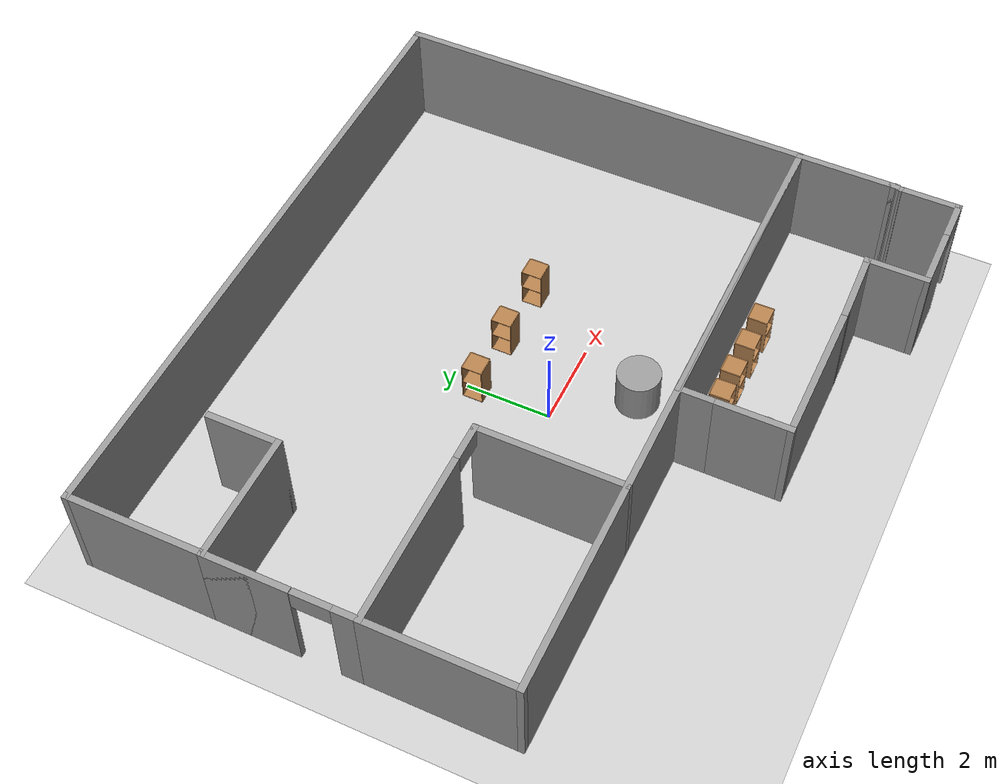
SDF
<sdf version="1.6">
 <world name="default">
  <model name="ground_plane">
   <static>1</static>
   <link name="link">
    <collision name="collision">
     <geometry><plane><normal>0 0 1</normal><size>100 100</size></plane></geometry>
     <surface><friction><ode><mu>100</mu><mu2>50</mu2></ode></friction></surface>
    </collision>
    <visual name="visual">
     <cast_shadows>0</cast_shadows>
     <geometry><plane><normal>0 0 1</normal><size>100 100</size></plane></geometry>
     <material>
      <script><uri>file://media/materials/scripts/gazebo.material</uri><name>Gazebo/Grey</name></script>
     </material>
    </visual>
   </link>
  </model>
  <model name="office_building_0">
   <pose>0.0648 2.0804 0 0 -0 0</pose>
   <link name="Wall_15">
    <collision name="Wall_15_Collision">
     <geometry><box><size>3.25 0.15 2.5</size></box></geometry>
     <pose>0 0 1.25 0 -0 0</pose>
    </collision>
    <visual name="Wall_15_Visual">
     <pose>0 0 1.25 0 -0 0</pose>
     <geometry><box><size>3.25 0.15 2.5</size></box></geometry>
     <material>
      <script><uri>file://media/materials/scripts/gazebo.material</uri><name>Gazebo/Grey</name></script>
      <ambient>1 1 1 1</ambient>
     </material>
    </visual>
    <pose>-7.425 3.375 0 0 0 -1.5708</pose>
   </link>
   <link name="Wall_16">
    <collision name="Wall_16_Collision">
     <geometry><box><size>3 0.15 2.5</size></box></geometry>
     <pose>0 0 1.25 0 -0 0</pose>
    </collision>
    <visual name="Wall_16_Visual">
     <pose>0 0 1.25 0 -0 0</pose>
     <geometry><box><size>3 0.15 2.5</size></box></geometry>
     <material>
      <script><uri>file://media/materials/scripts/gazebo.material</uri><name>Gazebo/Grey</name></script>
      <ambient>1 1 1 1</ambient>
     </material>
    </visual>
    <pose>-6 1.825 0 0 -0 0</pose>
   </link>
   <link name="Wall_17">
    <collision name="Wall_17_Collision">
     <geometry><box><size>1.75 0.15 2.5</size></box></geometry>
     <pose>0 0 1.25 0 -0 0</pose>
    </collision>
    <visual name="Wall_17_Visual">
     <pose>0 0 1.25 0 -0 0</pose>
     <geometry><box><size>1.75 0.15 2.5</size></box></geometry>
     <material>
      <script><uri>file://media/materials/scripts/gazebo.material</uri><name>Gazebo/Grey</name></script>
      <ambient>1 1 1 1</ambient>
     </material>
    </visual>
    <pose>-4.575 2.625 0 0 -0 1.5708</pose>
   </link>
   <link name="Wall_19">
    <collision name="Wall_19_Collision">
     <geometry><box><size>10 0.15 2.5</size></box></geometry>
     <pose>0 0 1.25 0 -0 0</pose>
    </collision>
    <visual name="Wall_19_Visual">
     <pose>0 0 1.25 0 -0 0</pose>
     <geometry><box><size>10 0.15 2.5</size></box></geometry>
     <material>
      <script><uri>file://media/materials/scripts/gazebo.material</uri><name>Gazebo/Grey</name></script>
      <ambient>1 1 1 1</ambient>
     </material>
    </visual>
    <pose>7.425 0 0 0 0 -1.5708</pose>
   </link>
   <link name="Wall_20">
    <collision name="Wall_20_Collision">
     <geometry><box><size>15 0.15 2.5</size></box></geometry>
     <pose>0 0 1.25 0 -0 0</pose>
    </collision>
    <visual name="Wall_20_Visual">
     <pose>0 0 1.25 0 -0 0</pose>
     <geometry><box><size>15 0.15 2.5</size></box></geometry>
     <material>
      <script><uri>file://media/materials/scripts/gazebo.material</uri><name>Gazebo/Grey</name></script>
      <ambient>1 1 1 1</ambient>
     </material>
    </visual>
    <pose>0 -4.925 0 0 -0 3.14159</pose>
   </link>
   <link name="Wall_21">
    <collision name="Wall_21_Collision">
     <geometry><box><size>3.5 0.15 2.5</size></box></geometry>
     <pose>0 0 1.25 0 -0 0</pose>
    </collision>
    <visual name="Wall_21_Visual">
     <pose>0 0 1.25 0 -0 0</pose>
     <geometry><box><size>3.5 0.15 2.5</size></box></geometry>
     <material>
      <script><uri>file://media/materials/scripts/gazebo.material</uri><name>Gazebo/Grey</name></script>
      <ambient>1 1 1 1</ambient>
     </material>
    </visual>
    <pose>-7.425 -3.25 0 0 -0 1.5708</pose>
   </link>
   <link name="Wall_22">
    <pose>-5 -1.575 0 0 -0 0</pose>
    <visual name="Wall_22_Visual_0">
     <pose>-0.454413 0 1.25 0 -0 0</pose>
     <geometry><box><size>4.09117 0.15 2.5</size></box></geometry>
     <material>
      <script><uri>file://media/materials/scripts/gazebo.material</uri><name>Gazebo/Grey</name></script>
      <ambient>1 1 1 1</ambient>
     </material>
    </visual>
    <collision name="Wall_22_Collision_0">
     <geometry><box><size>4.09117 0.15 2.5</size></box></geometry>
     <pose>-0.454413 0 1.25 0 -0 0</pose>
    </collision>
    <visual name="Wall_22_Visual_1">
     <pose>2.49559 0 1.25 0 -0 0</pose>
     <geometry><box><size>0.008827 0.15 2.5</size></box></geometry>
     <material>
      <script><uri>file://media/materials/scripts/gazebo.material</uri><name>Gazebo/Grey</name></script>
      <ambient>1 1 1 1</ambient>
     </material>
    </visual>
    <collision name="Wall_22_Collision_1">
     <geometry><box><size>0.008827 0.15 2.5</size></box></geometry>
     <pose>2.49559 0 1.25 0 -0 0</pose>
    </collision>
    <visual name="Wall_22_Visual_2">
     <pose>2.04117 0 2.25 0 -0 0</pose>
     <geometry><box><size>0.9 0.15 0.5</size></box></geometry>
     <material>
      <script><uri>file://media/materials/scripts/gazebo.material</uri><name>Gazebo/Grey</name></script>
      <ambient>1 1 1 1</ambient>
     </material>
    </visual>
    <collision name="Wall_22_Collision_2">
     <geometry><box><size>0.9 0.15 0.5</size></box></geometry>
     <pose>2.04117 0 2.25 0 -0 0</pose>
    </collision>
   </link>
   <link name="Wall_23">
    <collision name="Wall_23_Collision">
     <geometry><box><size>3.5 0.15 2.5</size></box></geometry>
     <pose>0 0 1.25 0 -0 0</pose>
    </collision>
    <visual name="Wall_23_Visual">
     <pose>0 0 1.25 0 -0 0</pose>
     <geometry><box><size>3.5 0.15 2.5</size></box></geometry>
     <material>
      <script><uri>file://media/materials/scripts/gazebo.material</uri><name>Gazebo/Grey</name></script>
      <ambient>1 1 1 1</ambient>
     </material>
    </visual>
    <pose>-2.575 -3.25 0 0 0 -1.5708</pose>
   </link>
   <link name="Wall_25">
    <pose>-7.425 0.125 0 0 -0 1.5708</pose>
    <visual name="Wall_25_Visual_0">
     <pose>-1.45033 0 1.25 0 -0 0</pose>
     <geometry><box><size>0.649349 0.15 2.5</size></box></geometry>
     <material>
      <script><uri>file://media/materials/scripts/gazebo.material</uri><name>Gazebo/Grey</name></script>
      <ambient>1 1 1 1</ambient>
     </material>
    </visual>
    <collision name="Wall_25_Collision_0">
     <geometry><box><size>0.649349 0.15 2.5</size></box></geometry>
     <pose>-1.45033 0 1.25 0 -0 0</pose>
    </collision>
    <visual name="Wall_25_Visual_1">
     <pose>0.774675 0 1.25 0 -0 0</pose>
     <geometry><box><size>2.00065 0.15 2.5</size></box></geometry>
     <material>
      <script><uri>file://media/materials/scripts/gazebo.material</uri><name>Gazebo/Grey</name></script>
      <ambient>1 1 1 1</ambient>
     </material>
    </visual>
    <collision name="Wall_25_Collision_1">
     <geometry><box><size>2.00065 0.15 2.5</size></box></geometry>
     <pose>0.774675 0 1.25 0 -0 0</pose>
    </collision>
    <visual name="Wall_25_Visual_2">
     <pose>1.21823 0 1.25 0 -0 0</pose>
     <geometry><box><size>1.11353 0.15 2.5</size></box></geometry>
     <material>
      <script><uri>file://media/materials/scripts/gazebo.material</uri><name>Gazebo/Grey</name></script>
      <ambient>1 1 1 1</ambient>
     </material>
    </visual>
    <collision name="Wall_25_Collision_2">
     <geometry><box><size>1.11353 0.15 2.5</size></box></geometry>
     <pose>1.21823 0 1.25 0 -0 0</pose>
    </collision>
    <visual name="Wall_25_Visual_3">
     <pose>-0.682092 0 2.25 0 -0 0</pose>
     <geometry><box><size>0.887117 0.15 0.5</size></box></geometry>
     <material>
      <script><uri>file://media/materials/scripts/gazebo.material</uri><name>Gazebo/Grey</name></script>
      <ambient>1 1 1 1</ambient>
     </material>
    </visual>
    <collision name="Wall_25_Collision_3">
     <geometry><box><size>0.887117 0.15 0.5</size></box></geometry>
     <pose>-0.682092 0 2.25 0 -0 0</pose>
    </collision>
   </link>
   <link name="Wall_4">
    <collision name="Wall_4_Collision">
     <geometry><box><size>15 0.15 2.5</size></box></geometry>
     <pose>0 0 1.25 0 -0 0</pose>
    </collision>
    <visual name="Wall_4_Visual">
     <pose>0 0 1.25 0 -0 0</pose>
     <geometry><box><size>15 0.15 2.5</size></box></geometry>
     <material>
      <script><uri>file://media/materials/scripts/gazebo.material</uri><name>Gazebo/Grey</name></script>
      <ambient>1 1 1 1</ambient>
     </material>
    </visual>
    <pose>0 4.925 0 0 -0 0</pose>
   </link>
   <static>1</static>
  </model>
  <model name="cabinet">
   <static>1</static>
   <link name="cabinet_bottom_plate">
    <inertial>
     <pose>0 0 -1 0 -0 0</pose>
     <inertia><ixx>2.05</ixx><ixy>0</ixy><ixz>0</ixz><iyy>2.05</iyy><iyz>0</iyz><izz>2.05</izz></inertia>
     <mass>25</mass>
    </inertial>
    <collision name="cabinet_bottom_plate_geom">
     <pose>0 0 0.01 0 -0 0</pose>
     <geometry><box><size>0.45 0.45 0.02</size></box></geometry>
    </collision>
    <visual name="cabinet_bottom_plate_geom_visual">
     <pose>0 0 0.01 0 -0 0</pose>
     <geometry><box><size>0.45 0.45 0.02</size></box></geometry>
     <material>
      <script><uri>file://media/materials/scripts/gazebo.material</uri><name>Gazebo/Wood</name></script>
     </material>
    </visual>
    <collision name="cabinet_bottom_plate_geom_cabinet_back_plate">
     <pose>0.235 0 0.51 0 -0 0</pose>
     <geometry><box><size>0.02 0.45 1.02</size></box></geometry>
    </collision>
    <visual name="cabinet_bottom_plate_geom_cabinet_back_plate_visual">
     <pose>0.235 0 0.51 0 -0 0</pose>
     <geometry><box><size>0.02 0.45 1.02</size></box></geometry>
     <material>
      <script><uri>file://media/materials/scripts/gazebo.material</uri><name>Gazebo/Wood</name></script>
     </material>
    </visual>
    <collision name="cabinet_bottom_plate_geom_cabinet_left_plate">
     <pose>0 0.235 0.51 0 -0 0</pose>
     <geometry><box><size>0.45 0.02 1.02</size></box></geometry>
    </collision>
    <visual name="cabinet_bottom_plate_geom_cabinet_left_plate_visual">
     <pose>0 0.235 0.51 0 -0 0</pose>
     <geometry><box><size>0.45 0.02 1.02</size></box></geometry>
     <material>
      <script><uri>file://media/materials/scripts/gazebo.material</uri><name>Gazebo/Wood</name></script>
     </material>
    </visual>
    <collision name="cabinet_bottom_plate_geom_cabinet_middle_plate">
     <pose>0 0 0.51 0 -0 0</pose>
     <geometry><box><size>0.45 0.45 0.02</size></box></geometry>
    </collision>
    <visual name="cabinet_bottom_plate_geom_cabinet_middle_plate_visual">
     <pose>0 0 0.51 0 -0 0</pose>
     <geometry><box><size>0.45 0.45 0.02</size></box></geometry>
     <material>
      <script><uri>file://media/materials/scripts/gazebo.material</uri><name>Gazebo/Wood</name></script>
     </material>
    </visual>
    <collision name="cabinet_bottom_plate_geom_cabinet_right_plate">
     <pose>0 -0.235 0.51 0 -0 0</pose>
     <geometry><box><size>0.45 0.02 1.02</size></box></geometry>
    </collision>
    <visual name="cabinet_bottom_plate_geom_cabinet_right_plate_visual">
     <pose>0 -0.235 0.51 0 -0 0</pose>
     <geometry><box><size>0.45 0.02 1.02</size></box></geometry>
     <material>
      <script><uri>file://media/materials/scripts/gazebo.material</uri><name>Gazebo/Wood</name></script>
     </material>
    </visual>
    <collision name="cabinet_bottom_plate_geom_cabinet_top_plate">
     <pose>0 0 1.01 0 -0 0</pose>
     <geometry><box><size>0.45 0.45 0.02</size></box></geometry>
    </collision>
    <visual name="cabinet_bottom_plate_geom_cabinet_top_plate_visual">
     <pose>0 0 1.01 0 -0 0</pose>
     <geometry><box><size>0.45 0.45 0.02</size></box></geometry>
     <material>
      <script><uri>file://media/materials/scripts/gazebo.material</uri><name>Gazebo/Wood</name></script>
     </material>
    </visual>
   </link>
   <pose>2.98625 1.73631 0 0 -0 0</pose>
  </model>
  <model name="cabinet_clone">
   <static>1</static>
   <link name="cabinet_bottom_plate">
    <inertial>
     <pose>0 0 -1 0 -0 0</pose>
     <inertia><ixx>2.05</ixx><ixy>0</ixy><ixz>0</ixz><iyy>2.05</iyy><iyz>0</iyz><izz>2.05</izz></inertia>
     <mass>25</mass>
    </inertial>
    <collision name="cabinet_bottom_plate_geom">
     <pose>0 0 0.01 0 -0 0</pose>
     <geometry><box><size>0.45 0.45 0.02</size></box></geometry>
    </collision>
    <visual name="cabinet_bottom_plate_geom_visual">
     <pose>0 0 0.01 0 -0 0</pose>
     <geometry><box><size>0.45 0.45 0.02</size></box></geometry>
     <material>
      <script><uri>file://media/materials/scripts/gazebo.material</uri><name>Gazebo/Wood</name></script>
     </material>
    </visual>
    <collision name="cabinet_bottom_plate_geom_cabinet_back_plate">
     <pose>0.235 0 0.51 0 -0 0</pose>
     <geometry><box><size>0.02 0.45 1.02</size></box></geometry>
    </collision>
    <visual name="cabinet_bottom_plate_geom_cabinet_back_plate_visual">
     <pose>0.235 0 0.51 0 -0 0</pose>
     <geometry><box><size>0.02 0.45 1.02</size></box></geometry>
     <material>
      <script><uri>file://media/materials/scripts/gazebo.material</uri><name>Gazebo/Wood</name></script>
     </material>
    </visual>
    <collision name="cabinet_bottom_plate_geom_cabinet_left_plate">
     <pose>0 0.235 0.51 0 -0 0</pose>
     <geometry><box><size>0.45 0.02 1.02</size></box></geometry>
    </collision>
    <visual name="cabinet_bottom_plate_geom_cabinet_left_plate_visual">
     <pose>0 0.235 0.51 0 -0 0</pose>
     <geometry><box><size>0.45 0.02 1.02</size></box></geometry>
     <material>
      <script><uri>file://media/materials/scripts/gazebo.material</uri><name>Gazebo/Wood</name></script>
     </material>
    </visual>
    <collision name="cabinet_bottom_plate_geom_cabinet_middle_plate">
     <pose>0 0 0.51 0 -0 0</pose>
     <geometry><box><size>0.45 0.45 0.02</size></box></geometry>
    </collision>
    <visual name="cabinet_bottom_plate_geom_cabinet_middle_plate_visual">
     <pose>0 0 0.51 0 -0 0</pose>
     <geometry><box><size>0.45 0.45 0.02</size></box></geometry>
     <material>
      <script><uri>file://media/materials/scripts/gazebo.material</uri><name>Gazebo/Wood</name></script>
     </material>
    </visual>
    <collision name="cabinet_bottom_plate_geom_cabinet_right_plate">
     <pose>0 -0.235 0.51 0 -0 0</pose>
     <geometry><box><size>0.45 0.02 1.02</size></box></geometry>
    </collision>
    <visual name="cabinet_bottom_plate_geom_cabinet_right_plate_visual">
     <pose>0 -0.235 0.51 0 -0 0</pose>
     <geometry><box><size>0.45 0.02 1.02</size></box></geometry>
     <material>
      <script><uri>file://media/materials/scripts/gazebo.material</uri><name>Gazebo/Wood</name></script>
     </material>
    </visual>
    <collision name="cabinet_bottom_plate_geom_cabinet_top_plate">
     <pose>0 0 1.01 0 -0 0</pose>
     <geometry><box><size>0.45 0.45 0.02</size></box></geometry>
    </collision>
    <visual name="cabinet_bottom_plate_geom_cabinet_top_plate_visual">
     <pose>0 0 1.01 0 -0 0</pose>
     <geometry><box><size>0.45 0.45 0.02</size></box></geometry>
     <material>
      <script><uri>file://media/materials/scripts/gazebo.material</uri><name>Gazebo/Wood</name></script>
     </material>
    </visual>
   </link>
   <pose>1.43128 1.75091 0 0 -0 0</pose>
  </model>
  <model name="unit_cylinder_1">
   <pose>1.23104 -1.57578 0.499994 -4e-06 -3e-06 -0</pose>
   <link name="link">
    <inertial>
     <mass>1</mass>
     <inertia><ixx>0.145833</ixx><ixy>0</ixy><ixz>0</ixz><iyy>0.145833</iyy><iyz>0</iyz><izz>0.125</izz></inertia>
    </inertial>
    <collision name="collision">
     <geometry><cylinder><radius>0.5</radius><length>1</length></cylinder></geometry>
    </collision>
    <visual name="visual">
     <geometry><cylinder><radius>0.5</radius><length>1</length></cylinder></geometry>
     <material>
      <script><name>Gazebo/Grey</name><uri>file://media/materials/scripts/gazebo.material</uri></script>
     </material>
    </visual>
   </link>
  </model>
  <model name="zak">
   <pose>3.81435 -4.72681 0 0 -0 0</pose>
   <link name="Wall_0">
    <collision name="Wall_0_Collision">
     <geometry><box><size>3.5 0.15 2.5</size></box></geometry>
     <pose>0 0 1.25 0 -0 0</pose>
    </collision>
    <visual name="Wall_0_Visual">
     <pose>0 0 1.25 0 -0 0</pose>
     <geometry><box><size>3.5 0.15 2.5</size></box></geometry>
     <material>
      <script><uri>file://media/materials/scripts/gazebo.material</uri><name>Gazebo/Grey</name></script>
      <ambient>1 1 1 1</ambient>
     </material>
    </visual>
    <pose>-2.00843 -0.576704 0 0 -0 3.14159</pose>
   </link>
   <link name="Wall_1">
    <collision name="Wall_1_Collision">
     <geometry><box><size>1.75 0.15 2.5</size></box></geometry>
     <pose>0 0 1.25 0 -0 0</pose>
    </collision>
    <visual name="Wall_1_Visual">
     <pose>0 0 1.25 0 -0 0</pose>
     <geometry><box><size>1.75 0.15 2.5</size></box></geometry>
     <material>
      <script><uri>file://media/materials/scripts/gazebo.material</uri><name>Gazebo/Grey</name></script>
      <ambient>1 1 1 1</ambient>
     </material>
    </visual>
    <pose>-3.68343 0.223296 0 0 -0 1.5708</pose>
   </link>
   <link name="Wall_10">
    <collision name="Wall_10_Collision">
     <geometry><box><size>1.5 0.15 2.5</size></box></geometry>
     <pose>0 0 1.25 0 -0 0</pose>
    </collision>
    <visual name="Wall_10_Visual">
     <pose>0 0 1.25 0 -0 0</pose>
     <geometry><box><size>1.5 0.15 2.5</size></box></geometry>
     <material>
      <script><uri>file://media/materials/scripts/gazebo.material</uri><name>Gazebo/Grey</name></script>
      <ambient>1 1 1 1</ambient>
     </material>
    </visual>
    <pose>1.29069 -1.1983 0 0 -0 1.5708</pose>
   </link>
   <link name="Wall_11">
    <collision name="Wall_11_Collision">
     <geometry><box><size>1.775 0.15 2.5</size></box></geometry>
     <pose>0 0 1.25 0 -0 0</pose>
    </collision>
    <visual name="Wall_11_Visual">
     <pose>0 0 1.25 0 -0 0</pose>
     <geometry><box><size>1.775 0.15 2.5</size></box></geometry>
     <material>
      <script><uri>file://media/materials/scripts/gazebo.material</uri><name>Gazebo/Grey</name></script>
      <ambient>1 1 1 1</ambient>
     </material>
    </visual>
    <pose>0.478631 -0.55 0 0 0 -3.10872</pose>
   </link>
   <link name="Wall_2">
    <collision name="Wall_2_Collision">
     <geometry><box><size>1 0.15 2.5</size></box></geometry>
     <pose>0 0 1.25 0 -0 0</pose>
    </collision>
    <visual name="Wall_2_Visual">
     <pose>0 0 1.25 0 -0 0</pose>
     <geometry><box><size>1 0.15 2.5</size></box></geometry>
     <material>
      <script><uri>file://media/materials/scripts/gazebo.material</uri><name>Gazebo/Grey</name></script>
      <ambient>1 1 1 1</ambient>
     </material>
    </visual>
    <pose>-3.68343 1.4483 0 0 -0 1.5708</pose>
   </link>
   <link name="Wall_3">
    <collision name="Wall_3_Collision">
     <geometry><box><size>7.5 0.15 2.5</size></box></geometry>
     <pose>0 0 1.25 0 -0 0</pose>
    </collision>
    <visual name="Wall_3_Visual">
     <pose>0 0 1.25 0 -0 0</pose>
     <geometry><box><size>7.5 0.15 2.5</size></box></geometry>
     <material>
      <script><uri>file://media/materials/scripts/gazebo.material</uri><name>Gazebo/Grey</name></script>
      <ambient>1 1 1 1</ambient>
     </material>
    </visual>
    <pose>-0.008428 1.8733 0 0 -0 0</pose>
   </link>
   <link name="Wall_4">
    <collision name="Wall_4_Collision">
     <geometry><box><size>2.25 0.15 2.5</size></box></geometry>
     <pose>0 0 1.25 0 -0 0</pose>
    </collision>
    <visual name="Wall_4_Visual">
     <pose>0 0 1.25 0 -0 0</pose>
     <geometry><box><size>2.25 0.15 2.5</size></box></geometry>
     <material>
      <script><uri>file://media/materials/scripts/gazebo.material</uri><name>Gazebo/Grey</name></script>
      <ambient>1 1 1 1</ambient>
     </material>
    </visual>
    <pose>3.66657 0.823296 0 0 0 -1.5708</pose>
   </link>
   <link name="Wall_5">
    <collision name="Wall_5_Collision">
     <geometry><box><size>0.25 0.15 2.5</size></box></geometry>
     <pose>0 0 1.25 0 -0 0</pose>
    </collision>
    <visual name="Wall_5_Visual">
     <pose>0 0 1.25 0 -0 0</pose>
     <geometry><box><size>0.25 0.15 2.5</size></box></geometry>
     <material>
      <script><uri>file://media/materials/scripts/gazebo.material</uri><name>Gazebo/Grey</name></script>
      <ambient>1 1 1 1</ambient>
     </material>
    </visual>
    <pose>3.66657 -0.276704 0 0 0 -1.5708</pose>
   </link>
   <link name="Wall_6">
    <collision name="Wall_6_Collision">
     <geometry><box><size>0.25 0.15 2.5</size></box></geometry>
     <pose>0 0 1.25 0 -0 0</pose>
    </collision>
    <visual name="Wall_6_Visual">
     <pose>0 0 1.25 0 -0 0</pose>
     <geometry><box><size>0.25 0.15 2.5</size></box></geometry>
     <material>
      <script><uri>file://media/materials/scripts/gazebo.material</uri><name>Gazebo/Grey</name></script>
      <ambient>1 1 1 1</ambient>
     </material>
    </visual>
    <pose>3.66657 -0.376704 0 0 0 -1.5708</pose>
   </link>
   <link name="Wall_7">
    <collision name="Wall_7_Collision">
     <geometry><box><size>0.25 0.15 2.5</size></box></geometry>
     <pose>0 0 1.25 0 -0 0</pose>
    </collision>
    <visual name="Wall_7_Visual">
     <pose>0 0 1.25 0 -0 0</pose>
     <geometry><box><size>0.25 0.15 2.5</size></box></geometry>
     <material>
      <script><uri>file://media/materials/scripts/gazebo.material</uri><name>Gazebo/Grey</name></script>
      <ambient>1 1 1 1</ambient>
     </material>
    </visual>
    <pose>3.65363 -0.475 0 0 0 -1.8326</pose>
   </link>
   <link name="Wall_8">
    <collision name="Wall_8_Collision">
     <geometry><box><size>1.5 0.15 2.5</size></box></geometry>
     <pose>0 0 1.25 0 -0 0</pose>
    </collision>
    <visual name="Wall_8_Visual">
     <pose>0 0 1.25 0 -0 0</pose>
     <geometry><box><size>1.5 0.15 2.5</size></box></geometry>
     <material>
      <script><uri>file://media/materials/scripts/gazebo.material</uri><name>Gazebo/Grey</name></script>
      <ambient>1 1 1 1</ambient>
     </material>
    </visual>
    <pose>3.64069 -1.1983 0 0 0 -1.5708</pose>
   </link>
   <link name="Wall_9">
    <pose>2.46569 -1.8733 0 0 -0 3.14159</pose>
    <visual name="Wall_9_Visual_0">
     <pose>-1.20373 0 1.25 0 -0 0</pose>
     <geometry><box><size>0.092549 0.15 2.5</size></box></geometry>
     <material>
      <script><uri>file://media/materials/scripts/gazebo.material</uri><name>Gazebo/Grey</name></script>
      <ambient>1 1 1 1</ambient>
     </material>
    </visual>
    <collision name="Wall_9_Collision_0">
     <geometry><box><size>0.092549 0.15 2.5</size></box></geometry>
     <pose>-1.20373 0 1.25 0 -0 0</pose>
    </collision>
    <visual name="Wall_9_Visual_1">
     <pose>0.496274 0 1.25 0 -0 0</pose>
     <geometry><box><size>1.50745 0.15 2.5</size></box></geometry>
     <material>
      <script><uri>file://media/materials/scripts/gazebo.material</uri><name>Gazebo/Grey</name></script>
      <ambient>1 1 1 1</ambient>
     </material>
    </visual>
    <collision name="Wall_9_Collision_1">
     <geometry><box><size>1.50745 0.15 2.5</size></box></geometry>
     <pose>0.496274 0 1.25 0 -0 0</pose>
    </collision>
    <visual name="Wall_9_Visual_2">
     <pose>-0.707451 0 2.25 0 -0 0</pose>
     <geometry><box><size>0.9 0.15 0.5</size></box></geometry>
     <material>
      <script><uri>file://media/materials/scripts/gazebo.material</uri><name>Gazebo/Grey</name></script>
      <ambient>1 1 1 1</ambient>
     </material>
    </visual>
    <collision name="Wall_9_Collision_2">
     <geometry><box><size>0.9 0.15 0.5</size></box></geometry>
     <pose>-0.707451 0 2.25 0 -0 0</pose>
    </collision>
   </link>
   <static>1</static>
  </model>
  <model name="cabinet_clone_clone">
   <static>1</static>
   <link name="cabinet_bottom_plate">
    <inertial>
     <pose>0 0 -1 0 -0 0</pose>
     <inertia><ixx>2.05</ixx><ixy>0</ixy><ixz>0</ixz><iyy>2.05</iyy><iyz>0</iyz><izz>2.05</izz></inertia>
     <mass>25</mass>
    </inertial>
    <collision name="cabinet_bottom_plate_geom">
     <pose>0 0 0.01 0 -0 0</pose>
     <geometry><box><size>0.45 0.45 0.02</size></box></geometry>
    </collision>
    <visual name="cabinet_bottom_plate_geom_visual">
     <pose>0 0 0.01 0 -0 0</pose>
     <geometry><box><size>0.45 0.45 0.02</size></box></geometry>
     <material>
      <script><uri>file://media/materials/scripts/gazebo.material</uri><name>Gazebo/Wood</name></script>
     </material>
    </visual>
    <collision name="cabinet_bottom_plate_geom_cabinet_back_plate">
     <pose>0.235 0 0.51 0 -0 0</pose>
     <geometry><box><size>0.02 0.45 1.02</size></box></geometry>
    </collision>
    <visual name="cabinet_bottom_plate_geom_cabinet_back_plate_visual">
     <pose>0.235 0 0.51 0 -0 0</pose>
     <geometry><box><size>0.02 0.45 1.02</size></box></geometry>
     <material>
      <script><uri>file://media/materials/scripts/gazebo.material</uri><name>Gazebo/Wood</name></script>
     </material>
    </visual>
    <collision name="cabinet_bottom_plate_geom_cabinet_left_plate">
     <pose>0 0.235 0.51 0 -0 0</pose>
     <geometry><box><size>0.45 0.02 1.02</size></box></geometry>
    </collision>
    <visual name="cabinet_bottom_plate_geom_cabinet_left_plate_visual">
     <pose>0 0.235 0.51 0 -0 0</pose>
     <geometry><box><size>0.45 0.02 1.02</size></box></geometry>
     <material>
      <script><uri>file://media/materials/scripts/gazebo.material</uri><name>Gazebo/Wood</name></script>
     </material>
    </visual>
    <collision name="cabinet_bottom_plate_geom_cabinet_middle_plate">
     <pose>0 0 0.51 0 -0 0</pose>
     <geometry><box><size>0.45 0.45 0.02</size></box></geometry>
    </collision>
    <visual name="cabinet_bottom_plate_geom_cabinet_middle_plate_visual">
     <pose>0 0 0.51 0 -0 0</pose>
     <geometry><box><size>0.45 0.45 0.02</size></box></geometry>
     <material>
      <script><uri>file://media/materials/scripts/gazebo.material</uri><name>Gazebo/Wood</name></script>
     </material>
    </visual>
    <collision name="cabinet_bottom_plate_geom_cabinet_right_plate">
     <pose>0 -0.235 0.51 0 -0 0</pose>
     <geometry><box><size>0.45 0.02 1.02</size></box></geometry>
    </collision>
    <visual name="cabinet_bottom_plate_geom_cabinet_right_plate_visual">
     <pose>0 -0.235 0.51 0 -0 0</pose>
     <geometry><box><size>0.45 0.02 1.02</size></box></geometry>
     <material>
      <script><uri>file://media/materials/scripts/gazebo.material</uri><name>Gazebo/Wood</name></script>
     </material>
    </visual>
    <collision name="cabinet_bottom_plate_geom_cabinet_top_plate">
     <pose>0 0 1.01 0 -0 0</pose>
     <geometry><box><size>0.45 0.45 0.02</size></box></geometry>
    </collision>
    <visual name="cabinet_bottom_plate_geom_cabinet_top_plate_visual">
     <pose>0 0 1.01 0 -0 0</pose>
     <geometry><box><size>0.45 0.45 0.02</size></box></geometry>
     <material>
      <script><uri>file://media/materials/scripts/gazebo.material</uri><name>Gazebo/Wood</name></script>
     </material>
    </visual>
   </link>
   <pose>-0.035114 1.75528 0 0 -0 0</pose>
  </model>
  <model name="cabinet_clone_0">
   <static>1</static>
   <link name="cabinet_bottom_plate">
    <inertial>
     <pose>0 0 -1 0 -0 0</pose>
     <inertia><ixx>2.05</ixx><ixy>0</ixy><ixz>0</ixz><iyy>2.05</iyy><iyz>0</iyz><izz>2.05</izz></inertia>
     <mass>25</mass>
    </inertial>
    <collision name="cabinet_bottom_plate_geom">
     <pose>0 0 0.01 0 -0 0</pose>
     <geometry><box><size>0.45 0.45 0.02</size></box></geometry>
    </collision>
    <visual name="cabinet_bottom_plate_geom_visual">
     <pose>0 0 0.01 0 -0 0</pose>
     <geometry><box><size>0.45 0.45 0.02</size></box></geometry>
     <material>
      <script><uri>file://media/materials/scripts/gazebo.material</uri><name>Gazebo/Wood</name></script>
     </material>
    </visual>
    <collision name="cabinet_bottom_plate_geom_cabinet_back_plate">
     <pose>0.235 0 0.51 0 -0 0</pose>
     <geometry><box><size>0.02 0.45 1.02</size></box></geometry>
    </collision>
    <visual name="cabinet_bottom_plate_geom_cabinet_back_plate_visual">
     <pose>0.235 0 0.51 0 -0 0</pose>
     <geometry><box><size>0.02 0.45 1.02</size></box></geometry>
     <material>
      <script><uri>file://media/materials/scripts/gazebo.material</uri><name>Gazebo/Wood</name></script>
     </material>
    </visual>
    <collision name="cabinet_bottom_plate_geom_cabinet_left_plate">
     <pose>0 0.235 0.51 0 -0 0</pose>
     <geometry><box><size>0.45 0.02 1.02</size></box></geometry>
    </collision>
    <visual name="cabinet_bottom_plate_geom_cabinet_left_plate_visual">
     <pose>0 0.235 0.51 0 -0 0</pose>
     <geometry><box><size>0.45 0.02 1.02</size></box></geometry>
     <material>
      <script><uri>file://media/materials/scripts/gazebo.material</uri><name>Gazebo/Wood</name></script>
     </material>
    </visual>
    <collision name="cabinet_bottom_plate_geom_cabinet_middle_plate">
     <pose>0 0 0.51 0 -0 0</pose>
     <geometry><box><size>0.45 0.45 0.02</size></box></geometry>
    </collision>
    <visual name="cabinet_bottom_plate_geom_cabinet_middle_plate_visual">
     <pose>0 0 0.51 0 -0 0</pose>
     <geometry><box><size>0.45 0.45 0.02</size></box></geometry>
     <material>
      <script><uri>file://media/materials/scripts/gazebo.material</uri><name>Gazebo/Wood</name></script>
     </material>
    </visual>
    <collision name="cabinet_bottom_plate_geom_cabinet_right_plate">
     <pose>0 -0.235 0.51 0 -0 0</pose>
     <geometry><box><size>0.45 0.02 1.02</size></box></geometry>
    </collision>
    <visual name="cabinet_bottom_plate_geom_cabinet_right_plate_visual">
     <pose>0 -0.235 0.51 0 -0 0</pose>
     <geometry><box><size>0.45 0.02 1.02</size></box></geometry>
     <material>
      <script><uri>file://media/materials/scripts/gazebo.material</uri><name>Gazebo/Wood</name></script>
     </material>
    </visual>
    <collision name="cabinet_bottom_plate_geom_cabinet_top_plate">
     <pose>0 0 1.01 0 -0 0</pose>
     <geometry><box><size>0.45 0.45 0.02</size></box></geometry>
    </collision>
    <visual name="cabinet_bottom_plate_geom_cabinet_top_plate_visual">
     <pose>0 0 1.01 0 -0 0</pose>
     <geometry><box><size>0.45 0.45 0.02</size></box></geometry>
     <material>
      <script><uri>file://media/materials/scripts/gazebo.material</uri><name>Gazebo/Wood</name></script>
     </material>
    </visual>
   </link>
   <pose>1.57796 -3.39063 0 0 -0 1.5933</pose>
  </model>
  <model name="cabinet_clone_2">
   <static>1</static>
   <link name="cabinet_bottom_plate">
    <inertial>
     <pose>0 0 -1 0 -0 0</pose>
     <inertia><ixx>2.05</ixx><ixy>0</ixy><ixz>0</ixz><iyy>2.05</iyy><iyz>0</iyz><izz>2.05</izz></inertia>
     <mass>25</mass>
    </inertial>
    <collision name="cabinet_bottom_plate_geom">
     <pose>0 0 0.01 0 -0 0</pose>
     <geometry><box><size>0.45 0.45 0.02</size></box></geometry>
    </collision>
    <visual name="cabinet_bottom_plate_geom_visual">
     <pose>0 0 0.01 0 -0 0</pose>
     <geometry><box><size>0.45 0.45 0.02</size></box></geometry>
     <material>
      <script><uri>file://media/materials/scripts/gazebo.material</uri><name>Gazebo/Wood</name></script>
     </material>
    </visual>
    <collision name="cabinet_bottom_plate_geom_cabinet_back_plate">
     <pose>0.235 0 0.51 0 -0 0</pose>
     <geometry><box><size>0.02 0.45 1.02</size></box></geometry>
    </collision>
    <visual name="cabinet_bottom_plate_geom_cabinet_back_plate_visual">
     <pose>0.235 0 0.51 0 -0 0</pose>
     <geometry><box><size>0.02 0.45 1.02</size></box></geometry>
     <material>
      <script><uri>file://media/materials/scripts/gazebo.material</uri><name>Gazebo/Wood</name></script>
     </material>
    </visual>
    <collision name="cabinet_bottom_plate_geom_cabinet_left_plate">
     <pose>0 0.235 0.51 0 -0 0</pose>
     <geometry><box><size>0.45 0.02 1.02</size></box></geometry>
    </collision>
    <visual name="cabinet_bottom_plate_geom_cabinet_left_plate_visual">
     <pose>0 0.235 0.51 0 -0 0</pose>
     <geometry><box><size>0.45 0.02 1.02</size></box></geometry>
     <material>
      <script><uri>file://media/materials/scripts/gazebo.material</uri><name>Gazebo/Wood</name></script>
     </material>
    </visual>
    <collision name="cabinet_bottom_plate_geom_cabinet_middle_plate">
     <pose>0 0 0.51 0 -0 0</pose>
     <geometry><box><size>0.45 0.45 0.02</size></box></geometry>
    </collision>
    <visual name="cabinet_bottom_plate_geom_cabinet_middle_plate_visual">
     <pose>0 0 0.51 0 -0 0</pose>
     <geometry><box><size>0.45 0.45 0.02</size></box></geometry>
     <material>
      <script><uri>file://media/materials/scripts/gazebo.material</uri><name>Gazebo/Wood</name></script>
     </material>
    </visual>
    <collision name="cabinet_bottom_plate_geom_cabinet_right_plate">
     <pose>0 -0.235 0.51 0 -0 0</pose>
     <geometry><box><size>0.45 0.02 1.02</size></box></geometry>
    </collision>
    <visual name="cabinet_bottom_plate_geom_cabinet_right_plate_visual">
     <pose>0 -0.235 0.51 0 -0 0</pose>
     <geometry><box><size>0.45 0.02 1.02</size></box></geometry>
     <material>
      <script><uri>file://media/materials/scripts/gazebo.material</uri><name>Gazebo/Wood</name></script>
     </material>
    </visual>
    <collision name="cabinet_bottom_plate_geom_cabinet_top_plate">
     <pose>0 0 1.01 0 -0 0</pose>
     <geometry><box><size>0.45 0.45 0.02</size></box></geometry>
    </collision>
    <visual name="cabinet_bottom_plate_geom_cabinet_top_plate_visual">
     <pose>0 0 1.01 0 -0 0</pose>
     <geometry><box><size>0.45 0.45 0.02</size></box></geometry>
     <material>
      <script><uri>file://media/materials/scripts/gazebo.material</uri><name>Gazebo/Wood</name></script>
     </material>
    </visual>
   </link>
   <pose>2.28963 -3.37781 0 0 -0 1.57339</pose>
  </model>
  <model name="cabinet_clone_2_clone">
   <static>1</static>
   <link name="cabinet_bottom_plate">
    <inertial>
     <pose>0 0 -1 0 -0 0</pose>
     <inertia><ixx>2.05</ixx><ixy>0</ixy><ixz>0</ixz><iyy>2.05</iyy><iyz>0</iyz><izz>2.05</izz></inertia>
     <mass>25</mass>
    </inertial>
    <collision name="cabinet_bottom_plate_geom">
     <pose>0 0 0.01 0 -0 0</pose>
     <geometry><box><size>0.45 0.45 0.02</size></box></geometry>
    </collision>
    <visual name="cabinet_bottom_plate_geom_visual">
     <pose>0 0 0.01 0 -0 0</pose>
     <geometry><box><size>0.45 0.45 0.02</size></box></geometry>
     <material>
      <script><uri>file://media/materials/scripts/gazebo.material</uri><name>Gazebo/Wood</name></script>
     </material>
    </visual>
    <collision name="cabinet_bottom_plate_geom_cabinet_back_plate">
     <pose>0.235 0 0.51 0 -0 0</pose>
     <geometry><box><size>0.02 0.45 1.02</size></box></geometry>
    </collision>
    <visual name="cabinet_bottom_plate_geom_cabinet_back_plate_visual">
     <pose>0.235 0 0.51 0 -0 0</pose>
     <geometry><box><size>0.02 0.45 1.02</size></box></geometry>
     <material>
      <script><uri>file://media/materials/scripts/gazebo.material</uri><name>Gazebo/Wood</name></script>
     </material>
    </visual>
    <collision name="cabinet_bottom_plate_geom_cabinet_left_plate">
     <pose>0 0.235 0.51 0 -0 0</pose>
     <geometry><box><size>0.45 0.02 1.02</size></box></geometry>
    </collision>
    <visual name="cabinet_bottom_plate_geom_cabinet_left_plate_visual">
     <pose>0 0.235 0.51 0 -0 0</pose>
     <geometry><box><size>0.45 0.02 1.02</size></box></geometry>
     <material>
      <script><uri>file://media/materials/scripts/gazebo.material</uri><name>Gazebo/Wood</name></script>
     </material>
    </visual>
    <collision name="cabinet_bottom_plate_geom_cabinet_middle_plate">
     <pose>0 0 0.51 0 -0 0</pose>
     <geometry><box><size>0.45 0.45 0.02</size></box></geometry>
    </collision>
    <visual name="cabinet_bottom_plate_geom_cabinet_middle_plate_visual">
     <pose>0 0 0.51 0 -0 0</pose>
     <geometry><box><size>0.45 0.45 0.02</size></box></geometry>
     <material>
      <script><uri>file://media/materials/scripts/gazebo.material</uri><name>Gazebo/Wood</name></script>
     </material>
    </visual>
    <collision name="cabinet_bottom_plate_geom_cabinet_right_plate">
     <pose>0 -0.235 0.51 0 -0 0</pose>
     <geometry><box><size>0.45 0.02 1.02</size></box></geometry>
    </collision>
    <visual name="cabinet_bottom_plate_geom_cabinet_right_plate_visual">
     <pose>0 -0.235 0.51 0 -0 0</pose>
     <geometry><box><size>0.45 0.02 1.02</size></box></geometry>
     <material>
      <script><uri>file://media/materials/scripts/gazebo.material</uri><name>Gazebo/Wood</name></script>
     </material>
    </visual>
    <collision name="cabinet_bottom_plate_geom_cabinet_top_plate">
     <pose>0 0 1.01 0 -0 0</pose>
     <geometry><box><size>0.45 0.45 0.02</size></box></geometry>
    </collision>
    <visual name="cabinet_bottom_plate_geom_cabinet_top_plate_visual">
     <pose>0 0 1.01 0 -0 0</pose>
     <geometry><box><size>0.45 0.45 0.02</size></box></geometry>
     <material>
      <script><uri>file://media/materials/scripts/gazebo.material</uri><name>Gazebo/Wood</name></script>
     </material>
    </visual>
   </link>
   <pose>3.10884 -3.39672 0 0 -0 1.57339</pose>
  </model>
  <model name="cabinet_clone_2_clone_0">
   <static>1</static>
   <link name="cabinet_bottom_plate">
    <inertial>
     <pose>0 0 -1 0 -0 0</pose>
     <inertia><ixx>2.05</ixx><ixy>0</ixy><ixz>0</ixz><iyy>2.05</iyy><iyz>0</iyz><izz>2.05</izz></inertia>
     <mass>25</mass>
    </inertial>
    <collision name="cabinet_bottom_plate_geom">
     <pose>0 0 0.01 0 -0 0</pose>
     <geometry><box><size>0.45 0.45 0.02</size></box></geometry>
    </collision>
    <visual name="cabinet_bottom_plate_geom_visual">
     <pose>0 0 0.01 0 -0 0</pose>
     <geometry><box><size>0.45 0.45 0.02</size></box></geometry>
     <material>
      <script><uri>file://media/materials/scripts/gazebo.material</uri><name>Gazebo/Wood</name></script>
     </material>
    </visual>
    <collision name="cabinet_bottom_plate_geom_cabinet_back_plate">
     <pose>0.235 0 0.51 0 -0 0</pose>
     <geometry><box><size>0.02 0.45 1.02</size></box></geometry>
    </collision>
    <visual name="cabinet_bottom_plate_geom_cabinet_back_plate_visual">
     <pose>0.235 0 0.51 0 -0 0</pose>
     <geometry><box><size>0.02 0.45 1.02</size></box></geometry>
     <material>
      <script><uri>file://media/materials/scripts/gazebo.material</uri><name>Gazebo/Wood</name></script>
     </material>
    </visual>
    <collision name="cabinet_bottom_plate_geom_cabinet_left_plate">
     <pose>0 0.235 0.51 0 -0 0</pose>
     <geometry><box><size>0.45 0.02 1.02</size></box></geometry>
    </collision>
    <visual name="cabinet_bottom_plate_geom_cabinet_left_plate_visual">
     <pose>0 0.235 0.51 0 -0 0</pose>
     <geometry><box><size>0.45 0.02 1.02</size></box></geometry>
     <material>
      <script><uri>file://media/materials/scripts/gazebo.material</uri><name>Gazebo/Wood</name></script>
     </material>
    </visual>
    <collision name="cabinet_bottom_plate_geom_cabinet_middle_plate">
     <pose>0 0 0.51 0 -0 0</pose>
     <geometry><box><size>0.45 0.45 0.02</size></box></geometry>
    </collision>
    <visual name="cabinet_bottom_plate_geom_cabinet_middle_plate_visual">
     <pose>0 0 0.51 0 -0 0</pose>
     <geometry><box><size>0.45 0.45 0.02</size></box></geometry>
     <material>
      <script><uri>file://media/materials/scripts/gazebo.material</uri><name>Gazebo/Wood</name></script>
     </material>
    </visual>
    <collision name="cabinet_bottom_plate_geom_cabinet_right_plate">
     <pose>0 -0.235 0.51 0 -0 0</pose>
     <geometry><box><size>0.45 0.02 1.02</size></box></geometry>
    </collision>
    <visual name="cabinet_bottom_plate_geom_cabinet_right_plate_visual">
     <pose>0 -0.235 0.51 0 -0 0</pose>
     <geometry><box><size>0.45 0.02 1.02</size></box></geometry>
     <material>
      <script><uri>file://media/materials/scripts/gazebo.material</uri><name>Gazebo/Wood</name></script>
     </material>
    </visual>
    <collision name="cabinet_bottom_plate_geom_cabinet_top_plate">
     <pose>0 0 1.01 0 -0 0</pose>
     <geometry><box><size>0.45 0.45 0.02</size></box></geometry>
    </collision>
    <visual name="cabinet_bottom_plate_geom_cabinet_top_plate_visual">
     <pose>0 0 1.01 0 -0 0</pose>
     <geometry><box><size>0.45 0.45 0.02</size></box></geometry>
     <material>
      <script><uri>file://media/materials/scripts/gazebo.material</uri><name>Gazebo/Wood</name></script>
     </material>
    </visual>
   </link>
   <pose>3.91801 -3.39795 0 0 -0 1.57339</pose>
  </model>
  <model name="unit_cylinder_1_clone">
   <pose>0.816924 -4.55893 0.499998 3e-06 -3e-06 0</pose>
   <link name="link">
    <inertial>
     <mass>1</mass>
     <inertia><ixx>0.145833</ixx><ixy>0</ixy><ixz>0</ixz><iyy>0.145833</iyy><iyz>0</iyz><izz>0.125</izz></inertia>
    </inertial>
    <collision name="collision">
     <geometry><cylinder><radius>0.5</radius><length>1</length></cylinder></geometry>
    </collision>
    <visual name="visual">
     <geometry><cylinder><radius>0.5</radius><length>1</length></cylinder></geometry>
     <material>
      <script><name>Gazebo/Grey</name><uri>file://media/materials/scripts/gazebo.material</uri></script>
     </material>
    </visual>
   </link>
  </model>
 </world>
</sdf>
